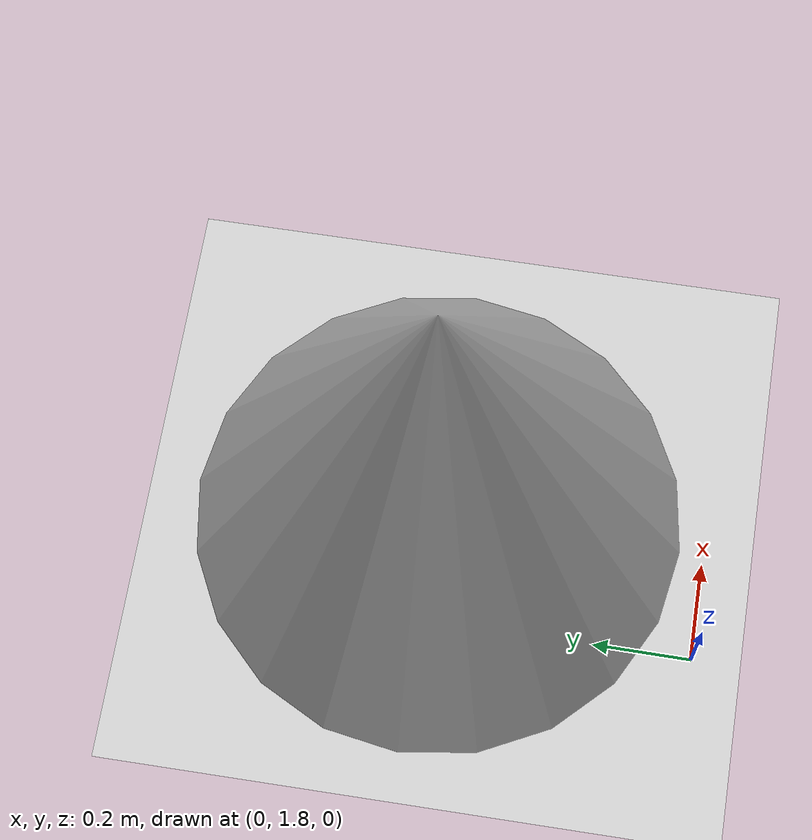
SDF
<sdf version="1.6">
  <world name="empty_world">

    <include>
      <uri>model://sun</uri>
    </include>

    <include>
      <uri>model://ground_plane</uri>
    </include>

  <model name="goal_cone_01"><pose>0.224 2.348 0.5 5.254459108606895e-17 -7.713284103729037e-10 1.8794</pose><static>false</static><self_collide>false</self_collide><link name="goal_cone_link"><pose>0 0 0 0 0 0</pose><inertial><pose>0 0 0 0 0 0</pose><mass>1.0</mass><inertia><ixx>0.075</ixx><ixy>0</ixy><ixz>0</ixz><iyy>0.075</iyy><iyz>0</iyz><izz>0.075</izz></inertia></inertial><collision name="goal_cone_collision"><geometry><cone><radius>0.5</radius><length>1.0</length></cone></geometry></collision><visual name="goal_cone_visual"><geometry><cone><radius>0.5</radius><length>1.0</length></cone></geometry><material><ambient>0.699999988 0.699999988 0.699999988 1.0</ambient><diffuse>0.699999988 0.699999988 0.699999988 1.0</diffuse><specular>1 1 1 1</specular></material></visual></link></model></world>
</sdf>
